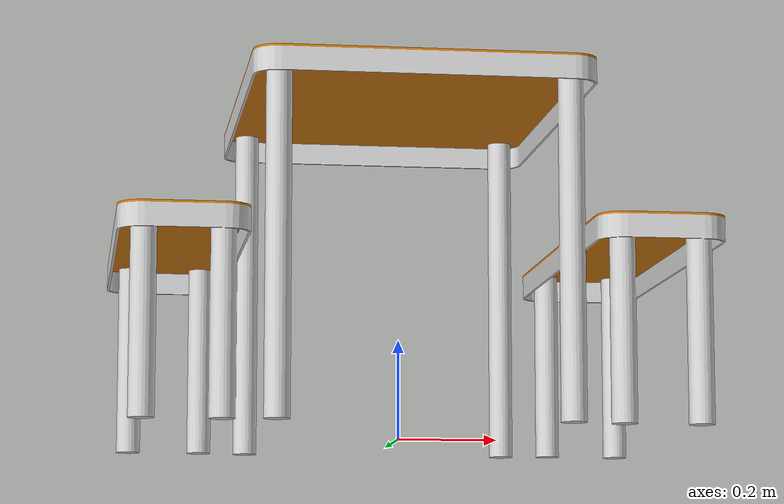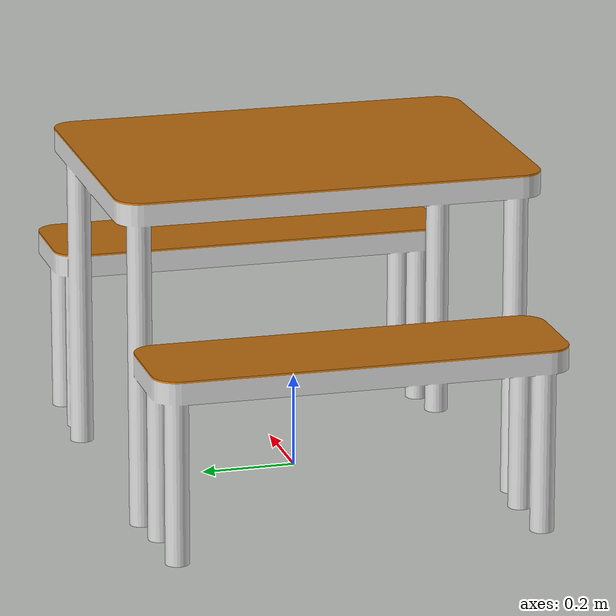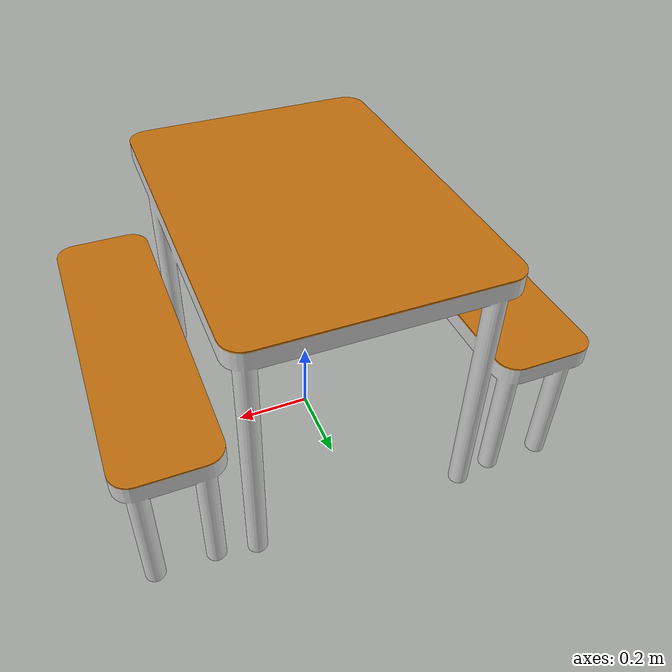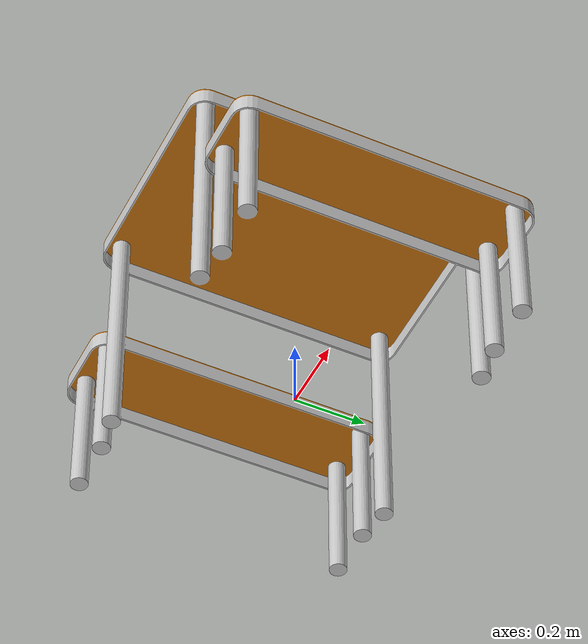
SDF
<?xml version="1.0" ?>

<sdf version="1.5">
  <model name="rgiro_quickcamp_table">
    <static>1</static>
    <link name="link">
      <visual name="visual">
        <geometry>
          <mesh>
            <uri>model://rgiro_quickcamp_table/meshes/rgiro_quickcamp_table.dae</uri>
          </mesh>
        </geometry>
      </visual>
      <collision name="collision">
        <geometry>
          <mesh>
            <uri>model://rgiro_quickcamp_table/meshes/rgiro_quickcamp_table.dae</uri>
          </mesh>
        </geometry>
      </collision>
    </link>
  </model>
</sdf>
